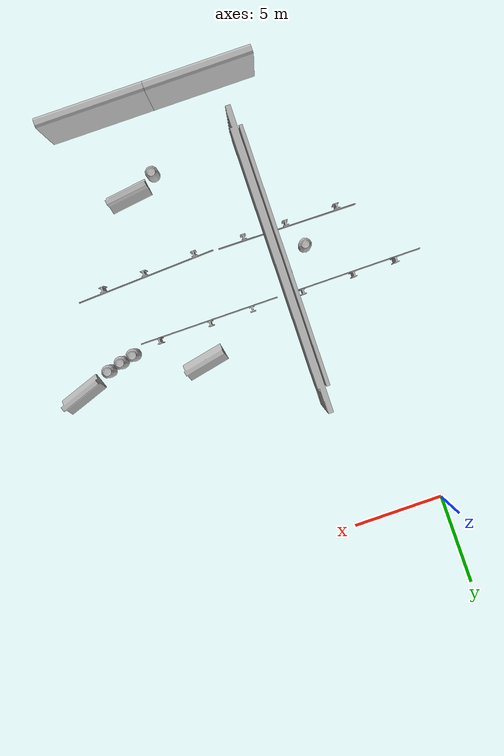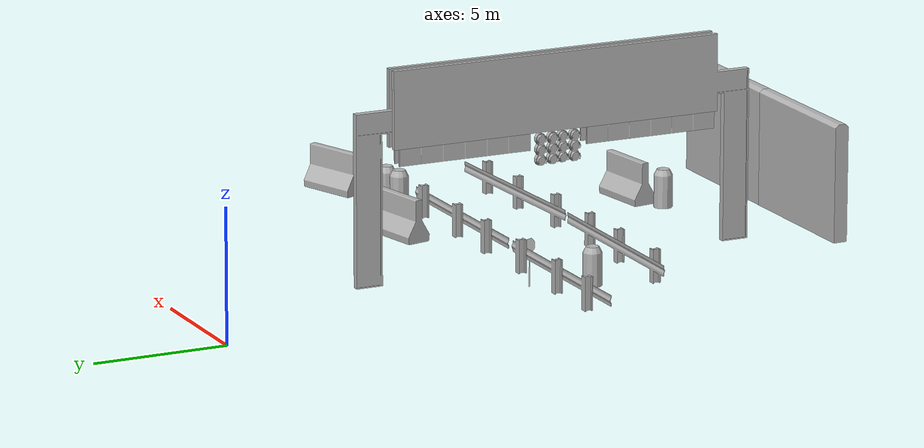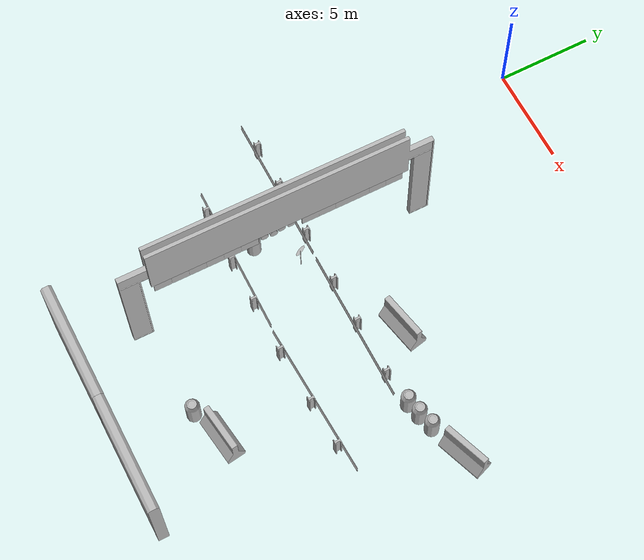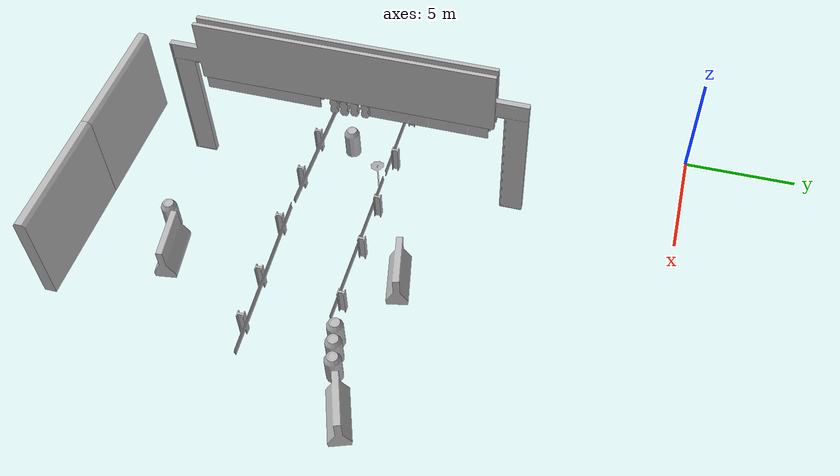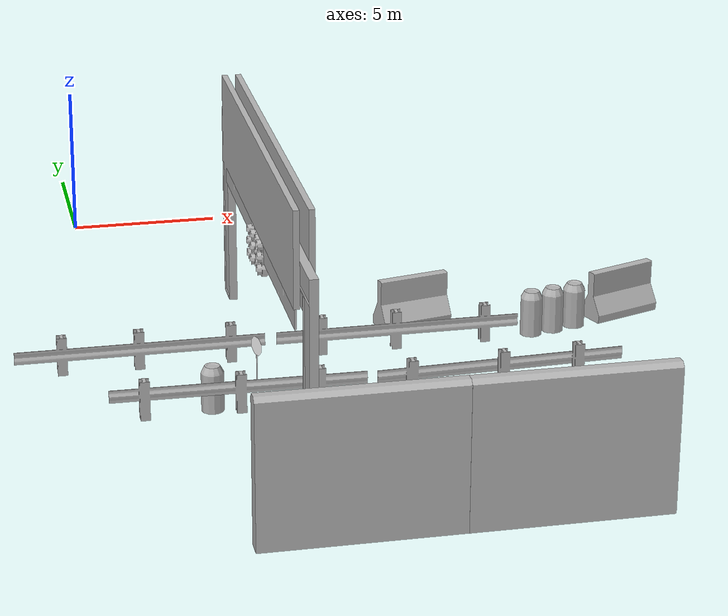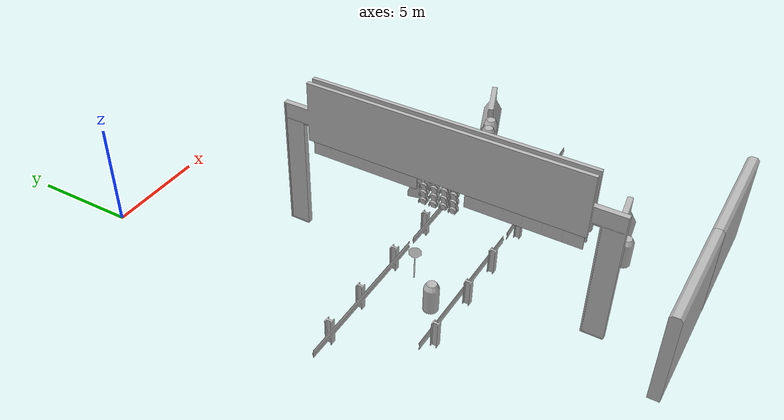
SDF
<sdf version="1.6">
 <world name="default">
  <model name="aws_robomaker_racetrack_Billboard_01">
   <link name="aws_Billboard_01::body">
    <inertial>
     <mass>1000</mass>
     <inertia><ixx>1</ixx><ixy>0</ixy><ixz>0</ixz><iyy>1</iyy><iyz>0</iyz><izz>1</izz></inertia>
    </inertial>
    <visual name="visual">
     <geometry>
      <mesh><uri>file://models/aws_robomaker_racetrack_Billboard_01/meshes/aws_Billboard_01_visual.DAE</uri></mesh>
     </geometry>
     <material><shader type="pixel"><normal_map>__default__</normal_map></shader></material>
     <meta><layer>2</layer></meta>
    </visual>
    <collision name="collision_0">
     <geometry>
      <mesh>
       <uri>file://models/aws_robomaker_racetrack_Billboard_01/meshes/aws_Billboard_01_collision.DAE</uri>
       <scale>1 1 1</scale>
      </mesh>
     </geometry>
     <surface>
      <friction>
       <ode><mu>1</mu><mu2>1</mu2><fdir1>0 0 0</fdir1><slip1>0</slip1><slip2>0</slip2></ode>
       <torsional>
        <coefficient>1</coefficient>
        <patch_radius>0</patch_radius>
        <surface_radius>0</surface_radius>
        <use_patch_radius>1</use_patch_radius>
        <ode><slip>0</slip></ode>
       </torsional>
      </friction>
      <bounce><restitution_coefficient>0</restitution_coefficient><threshold>1e+06</threshold></bounce>
      <contact>
       <collide_without_contact>0</collide_without_contact>
       <collide_without_contact_bitmask>1</collide_without_contact_bitmask>
       <collide_bitmask>1</collide_bitmask>
       <ode>
        <soft_cfm>0</soft_cfm>
        <soft_erp>0.2</soft_erp>
        <kp>1e+13</kp>
        <kd>1</kd>
        <max_vel>0.01</max_vel>
        <min_depth>0</min_depth>
       </ode>
       <bullet>
        <split_impulse>1</split_impulse>
        <split_impulse_penetration_threshold>-0.01</split_impulse_penetration_threshold>
        <soft_cfm>0</soft_cfm>
        <soft_erp>0.2</soft_erp>
        <kp>1e+13</kp>
        <kd>1</kd>
       </bullet>
      </contact>
     </surface>
    </collision>
   </link>
   <static>1</static>
   <pose>4.32789 -14.8431 -2e-06 0 1e-06 1.56416</pose>
  </model>
  <model name="aws_robomaker_racetrack_CrashworthBucket_01_22">
   <link name="aws_CrashworthBucket_01::body">
    <inertial>
     <mass>5</mass>
     <inertia><ixx>1</ixx><ixy>0</ixy><ixz>0</ixz><iyy>1</iyy><iyz>0</iyz><izz>1</izz></inertia>
    </inertial>
    <visual name="visual">
     <geometry>
      <mesh>
       <uri>file://models/aws_robomaker_racetrack_CrashworthBucket_01/meshes/aws_CrashworthBucket_01_visual.DAE</uri>
      </mesh>
     </geometry>
     <material><shader type="pixel"><normal_map>__default__</normal_map></shader></material>
     <meta><layer>0</layer></meta>
    </visual>
    <collision name="collision_0">
     <geometry>
      <mesh>
       <uri>file://models/aws_robomaker_racetrack_CrashworthBucket_01/meshes/aws_CrashworthBucket_01_collision.DAE</uri>
       <scale>1 1 1</scale>
      </mesh>
     </geometry>
     <surface>
      <friction>
       <ode><mu>1</mu><mu2>1</mu2><fdir1>0 0 0</fdir1><slip1>0</slip1><slip2>0</slip2></ode>
       <torsional>
        <coefficient>1</coefficient>
        <patch_radius>0</patch_radius>
        <surface_radius>0</surface_radius>
        <use_patch_radius>1</use_patch_radius>
        <ode><slip>0</slip></ode>
       </torsional>
      </friction>
      <bounce><restitution_coefficient>0</restitution_coefficient><threshold>1e+06</threshold></bounce>
      <contact>
       <collide_without_contact>0</collide_without_contact>
       <collide_without_contact_bitmask>1</collide_without_contact_bitmask>
       <collide_bitmask>1</collide_bitmask>
       <ode>
        <soft_cfm>0</soft_cfm>
        <soft_erp>0.2</soft_erp>
        <kp>1e+13</kp>
        <kd>1</kd>
        <max_vel>0.01</max_vel>
        <min_depth>0</min_depth>
       </ode>
       <bullet>
        <split_impulse>1</split_impulse>
        <split_impulse_penetration_threshold>-0.01</split_impulse_penetration_threshold>
        <soft_cfm>0</soft_cfm>
        <soft_erp>0.2</soft_erp>
        <kp>1e+13</kp>
        <kd>1</kd>
       </bullet>
      </contact>
     </surface>
    </collision>
   </link>
   <static>1</static>
   <pose>14.1427 -12.6734 0.054 0 -0 0</pose>
  </model>
  <model name="aws_robomaker_racetrack_CrashworthBucket_01_23">
   <link name="aws_CrashworthBucket_01::body">
    <inertial>
     <mass>5</mass>
     <inertia><ixx>1</ixx><ixy>0</ixy><ixz>0</ixz><iyy>1</iyy><iyz>0</iyz><izz>1</izz></inertia>
    </inertial>
    <visual name="visual">
     <geometry>
      <mesh>
       <uri>file://models/aws_robomaker_racetrack_CrashworthBucket_01/meshes/aws_CrashworthBucket_01_visual.DAE</uri>
      </mesh>
     </geometry>
     <material><shader type="pixel"><normal_map>__default__</normal_map></shader></material>
     <meta><layer>0</layer></meta>
    </visual>
    <collision name="collision_0">
     <geometry>
      <mesh>
       <uri>file://models/aws_robomaker_racetrack_CrashworthBucket_01/meshes/aws_CrashworthBucket_01_collision.DAE</uri>
       <scale>1 1 1</scale>
      </mesh>
     </geometry>
     <surface>
      <friction>
       <ode><mu>1</mu><mu2>1</mu2><fdir1>0 0 0</fdir1><slip1>0</slip1><slip2>0</slip2></ode>
       <torsional>
        <coefficient>1</coefficient>
        <patch_radius>0</patch_radius>
        <surface_radius>0</surface_radius>
        <use_patch_radius>1</use_patch_radius>
        <ode><slip>0</slip></ode>
       </torsional>
      </friction>
      <bounce><restitution_coefficient>0</restitution_coefficient><threshold>1e+06</threshold></bounce>
      <contact>
       <collide_without_contact>0</collide_without_contact>
       <collide_without_contact_bitmask>1</collide_without_contact_bitmask>
       <collide_bitmask>1</collide_bitmask>
       <ode>
        <soft_cfm>0</soft_cfm>
        <soft_erp>0.2</soft_erp>
        <kp>1e+13</kp>
        <kd>1</kd>
        <max_vel>0.01</max_vel>
        <min_depth>0</min_depth>
       </ode>
       <bullet>
        <split_impulse>1</split_impulse>
        <split_impulse_penetration_threshold>-0.01</split_impulse_penetration_threshold>
        <soft_cfm>0</soft_cfm>
        <soft_erp>0.2</soft_erp>
        <kp>1e+13</kp>
        <kd>1</kd>
       </bullet>
      </contact>
     </surface>
    </collision>
   </link>
   <static>1</static>
   <pose>14.9254 -12.4456 0.054 0 -0 0</pose>
  </model>
  <model name="aws_robomaker_racetrack_CrashworthBucket_01_25">
   <link name="aws_CrashworthBucket_01::body">
    <inertial>
     <mass>5</mass>
     <inertia><ixx>1</ixx><ixy>0</ixy><ixz>0</ixz><iyy>1</iyy><iyz>0</iyz><izz>1</izz></inertia>
    </inertial>
    <visual name="visual">
     <geometry>
      <mesh>
       <uri>file://models/aws_robomaker_racetrack_CrashworthBucket_01/meshes/aws_CrashworthBucket_01_visual.DAE</uri>
      </mesh>
     </geometry>
     <material><shader type="pixel"><normal_map>__default__</normal_map></shader></material>
     <meta><layer>0</layer></meta>
    </visual>
    <collision name="collision_0">
     <geometry>
      <mesh>
       <uri>file://models/aws_robomaker_racetrack_CrashworthBucket_01/meshes/aws_CrashworthBucket_01_collision.DAE</uri>
       <scale>1 1 1</scale>
      </mesh>
     </geometry>
     <surface>
      <friction>
       <ode><mu>1</mu><mu2>1</mu2><fdir1>0 0 0</fdir1><slip1>0</slip1><slip2>0</slip2></ode>
       <torsional>
        <coefficient>1</coefficient>
        <patch_radius>0</patch_radius>
        <surface_radius>0</surface_radius>
        <use_patch_radius>1</use_patch_radius>
        <ode><slip>0</slip></ode>
       </torsional>
      </friction>
      <bounce><restitution_coefficient>0</restitution_coefficient><threshold>1e+06</threshold></bounce>
      <contact>
       <collide_without_contact>0</collide_without_contact>
       <collide_without_contact_bitmask>1</collide_without_contact_bitmask>
       <collide_bitmask>1</collide_bitmask>
       <ode>
        <soft_cfm>0</soft_cfm>
        <soft_erp>0.2</soft_erp>
        <kp>1e+13</kp>
        <kd>1</kd>
        <max_vel>0.01</max_vel>
        <min_depth>0</min_depth>
       </ode>
       <bullet>
        <split_impulse>1</split_impulse>
        <split_impulse_penetration_threshold>-0.01</split_impulse_penetration_threshold>
        <soft_cfm>0</soft_cfm>
        <soft_erp>0.2</soft_erp>
        <kp>1e+13</kp>
        <kd>1</kd>
       </bullet>
      </contact>
     </surface>
    </collision>
   </link>
   <static>1</static>
   <pose>13.3868 -12.8508 0.054 0 -0 0</pose>
  </model>
  <model name="aws_robomaker_racetrack_CrashworthBucket_01_26">
   <link name="aws_CrashworthBucket_01::body">
    <inertial>
     <mass>5</mass>
     <inertia><ixx>1</ixx><ixy>0</ixy><ixz>0</ixz><iyy>1</iyy><iyz>0</iyz><izz>1</izz></inertia>
    </inertial>
    <visual name="visual">
     <geometry>
      <mesh>
       <uri>file://models/aws_robomaker_racetrack_CrashworthBucket_01/meshes/aws_CrashworthBucket_01_visual.DAE</uri>
      </mesh>
     </geometry>
     <material><shader type="pixel"><normal_map>__default__</normal_map></shader></material>
     <meta><layer>0</layer></meta>
    </visual>
    <collision name="collision_0">
     <geometry>
      <mesh>
       <uri>file://models/aws_robomaker_racetrack_CrashworthBucket_01/meshes/aws_CrashworthBucket_01_collision.DAE</uri>
       <scale>1 1 1</scale>
      </mesh>
     </geometry>
     <surface>
      <friction>
       <ode><mu>1</mu><mu2>1</mu2><fdir1>0 0 0</fdir1><slip1>0</slip1><slip2>0</slip2></ode>
       <torsional>
        <coefficient>1</coefficient>
        <patch_radius>0</patch_radius>
        <surface_radius>0</surface_radius>
        <use_patch_radius>1</use_patch_radius>
        <ode><slip>0</slip></ode>
       </torsional>
      </friction>
      <bounce><restitution_coefficient>0</restitution_coefficient><threshold>1e+06</threshold></bounce>
      <contact>
       <collide_without_contact>0</collide_without_contact>
       <collide_without_contact_bitmask>1</collide_without_contact_bitmask>
       <collide_bitmask>1</collide_bitmask>
       <ode>
        <soft_cfm>0</soft_cfm>
        <soft_erp>0.2</soft_erp>
        <kp>1e+13</kp>
        <kd>1</kd>
        <max_vel>0.01</max_vel>
        <min_depth>0</min_depth>
       </ode>
       <bullet>
        <split_impulse>1</split_impulse>
        <split_impulse_penetration_threshold>-0.01</split_impulse_penetration_threshold>
        <soft_cfm>0</soft_cfm>
        <soft_erp>0.2</soft_erp>
        <kp>1e+13</kp>
        <kd>1</kd>
       </bullet>
      </contact>
     </surface>
    </collision>
   </link>
   <static>1</static>
   <pose>9.22311 -21.8198 0.054 0 -0 0</pose>
  </model>
  <model name="aws_robomaker_racetrack_CrashworthBucket_01_28">
   <link name="aws_CrashworthBucket_01::body">
    <inertial>
     <mass>5</mass>
     <inertia><ixx>1</ixx><ixy>0</ixy><ixz>0</ixz><iyy>1</iyy><iyz>0</iyz><izz>1</izz></inertia>
    </inertial>
    <visual name="visual">
     <geometry>
      <mesh>
       <uri>file://models/aws_robomaker_racetrack_CrashworthBucket_01/meshes/aws_CrashworthBucket_01_visual.DAE</uri>
      </mesh>
     </geometry>
     <material><shader type="pixel"><normal_map>__default__</normal_map></shader></material>
     <meta><layer>0</layer></meta>
    </visual>
    <collision name="collision_0">
     <geometry>
      <mesh>
       <uri>file://models/aws_robomaker_racetrack_CrashworthBucket_01/meshes/aws_CrashworthBucket_01_collision.DAE</uri>
       <scale>1 1 1</scale>
      </mesh>
     </geometry>
     <surface>
      <friction>
       <ode><mu>1</mu><mu2>1</mu2><fdir1>0 0 0</fdir1><slip1>0</slip1><slip2>0</slip2></ode>
       <torsional>
        <coefficient>1</coefficient>
        <patch_radius>0</patch_radius>
        <surface_radius>0</surface_radius>
        <use_patch_radius>1</use_patch_radius>
        <ode><slip>0</slip></ode>
       </torsional>
      </friction>
      <bounce><restitution_coefficient>0</restitution_coefficient><threshold>1e+06</threshold></bounce>
      <contact>
       <collide_without_contact>0</collide_without_contact>
       <collide_without_contact_bitmask>1</collide_without_contact_bitmask>
       <collide_bitmask>1</collide_bitmask>
       <ode>
        <soft_cfm>0</soft_cfm>
        <soft_erp>0.2</soft_erp>
        <kp>1e+13</kp>
        <kd>1</kd>
        <max_vel>0.01</max_vel>
        <min_depth>0</min_depth>
       </ode>
       <bullet>
        <split_impulse>1</split_impulse>
        <split_impulse_penetration_threshold>-0.01</split_impulse_penetration_threshold>
        <soft_cfm>0</soft_cfm>
        <soft_erp>0.2</soft_erp>
        <kp>1e+13</kp>
        <kd>1</kd>
       </bullet>
      </contact>
     </surface>
    </collision>
   </link>
   <static>1</static>
   <pose>2.62293 -15.5135 -0.473949 0 -0 0</pose>
  </model>
  <model name="aws_robomaker_racetrack_FenceMesh_01_00">
   <link name="aws_FenceMesh_01::body">
    <inertial>
     <mass>1</mass>
     <inertia><ixx>1</ixx><ixy>0</ixy><ixz>0</ixz><iyy>1</iyy><iyz>0</iyz><izz>1</izz></inertia>
    </inertial>
    <visual name="visual">
     <geometry>
      <mesh><uri>file://models/aws_robomaker_racetrack_FenceMesh_01/meshes/aws_FenceMesh_01_visual.DAE</uri></mesh>
     </geometry>
     <material><shader type="pixel"><normal_map>__default__</normal_map></shader></material>
     <meta><layer>2</layer></meta>
    </visual>
    <collision name="collision_0">
     <geometry>
      <mesh>
       <uri>file://models/aws_robomaker_racetrack_FenceMesh_01/meshes/aws_FenceMesh_01_collision.DAE</uri>
       <scale>1 1 1</scale>
      </mesh>
     </geometry>
     <surface>
      <friction>
       <ode><mu>1</mu><mu2>1</mu2><fdir1>0 0 0</fdir1><slip1>0</slip1><slip2>0</slip2></ode>
       <torsional>
        <coefficient>1</coefficient>
        <patch_radius>0</patch_radius>
        <surface_radius>0</surface_radius>
        <use_patch_radius>1</use_patch_radius>
        <ode><slip>0</slip></ode>
       </torsional>
      </friction>
      <bounce><restitution_coefficient>0</restitution_coefficient><threshold>1e+06</threshold></bounce>
      <contact>
       <collide_without_contact>0</collide_without_contact>
       <collide_without_contact_bitmask>1</collide_without_contact_bitmask>
       <collide_bitmask>2</collide_bitmask>
       <ode>
        <soft_cfm>0</soft_cfm>
        <soft_erp>0.2</soft_erp>
        <kp>1e+13</kp>
        <kd>1</kd>
        <max_vel>0.01</max_vel>
        <min_depth>0</min_depth>
       </ode>
       <bullet>
        <split_impulse>1</split_impulse>
        <split_impulse_penetration_threshold>-0.01</split_impulse_penetration_threshold>
        <soft_cfm>0</soft_cfm>
        <soft_erp>0.2</soft_erp>
        <kp>1e+13</kp>
        <kd>1</kd>
       </bullet>
      </contact>
     </surface>
    </collision>
   </link>
   <static>1</static>
   <pose>4.2331 -11.1761 5.05223 0 0 -0.006038</pose>
  </model>
  <model name="aws_robomaker_racetrack_FenceMesh_01_01">
   <link name="aws_FenceMesh_01::body">
    <inertial>
     <mass>1</mass>
     <inertia><ixx>1</ixx><ixy>0</ixy><ixz>0</ixz><iyy>1</iyy><iyz>0</iyz><izz>1</izz></inertia>
    </inertial>
    <visual name="visual">
     <geometry>
      <mesh><uri>file://models/aws_robomaker_racetrack_FenceMesh_01/meshes/aws_FenceMesh_01_visual.DAE</uri></mesh>
     </geometry>
     <material><shader type="pixel"><normal_map>__default__</normal_map></shader></material>
     <meta><layer>2</layer></meta>
    </visual>
    <collision name="collision_0">
     <geometry>
      <mesh>
       <uri>file://models/aws_robomaker_racetrack_FenceMesh_01/meshes/aws_FenceMesh_01_collision.DAE</uri>
       <scale>1 1 1</scale>
      </mesh>
     </geometry>
     <surface>
      <friction>
       <ode><mu>1</mu><mu2>1</mu2><fdir1>0 0 0</fdir1><slip1>0</slip1><slip2>0</slip2></ode>
       <torsional>
        <coefficient>1</coefficient>
        <patch_radius>0</patch_radius>
        <surface_radius>0</surface_radius>
        <use_patch_radius>1</use_patch_radius>
        <ode><slip>0</slip></ode>
       </torsional>
      </friction>
      <bounce><restitution_coefficient>0</restitution_coefficient><threshold>1e+06</threshold></bounce>
      <contact>
       <collide_without_contact>0</collide_without_contact>
       <collide_without_contact_bitmask>1</collide_without_contact_bitmask>
       <collide_bitmask>2</collide_bitmask>
       <ode>
        <soft_cfm>0</soft_cfm>
        <soft_erp>0.2</soft_erp>
        <kp>1e+13</kp>
        <kd>1</kd>
        <max_vel>0.01</max_vel>
        <min_depth>0</min_depth>
       </ode>
       <bullet>
        <split_impulse>1</split_impulse>
        <split_impulse_penetration_threshold>-0.01</split_impulse_penetration_threshold>
        <soft_cfm>0</soft_cfm>
        <soft_erp>0.2</soft_erp>
        <kp>1e+13</kp>
        <kd>1</kd>
       </bullet>
      </contact>
     </surface>
    </collision>
   </link>
   <static>1</static>
   <pose>4.16406 -18.6269 5.05223 0 0 -0.006038</pose>
  </model>
  <model name="aws_robomaker_racetrack_FenceMesh_01_02">
   <link name="aws_FenceMesh_01::body">
    <inertial>
     <mass>1</mass>
     <inertia><ixx>1</ixx><ixy>0</ixy><ixz>0</ixz><iyy>1</iyy><iyz>0</iyz><izz>1</izz></inertia>
    </inertial>
    <visual name="visual">
     <geometry>
      <mesh><uri>file://models/aws_robomaker_racetrack_FenceMesh_01/meshes/aws_FenceMesh_01_visual.DAE</uri></mesh>
     </geometry>
     <material><shader type="pixel"><normal_map>__default__</normal_map></shader></material>
     <meta><layer>2</layer></meta>
    </visual>
    <collision name="collision_0">
     <geometry>
      <mesh>
       <uri>file://models/aws_robomaker_racetrack_FenceMesh_01/meshes/aws_FenceMesh_01_collision.DAE</uri>
       <scale>1 1 1</scale>
      </mesh>
     </geometry>
     <surface>
      <friction>
       <ode><mu>1</mu><mu2>1</mu2><fdir1>0 0 0</fdir1><slip1>0</slip1><slip2>0</slip2></ode>
       <torsional>
        <coefficient>1</coefficient>
        <patch_radius>0</patch_radius>
        <surface_radius>0</surface_radius>
        <use_patch_radius>1</use_patch_radius>
        <ode><slip>0</slip></ode>
       </torsional>
      </friction>
      <bounce><restitution_coefficient>0</restitution_coefficient><threshold>1e+06</threshold></bounce>
      <contact>
       <collide_without_contact>0</collide_without_contact>
       <collide_without_contact_bitmask>1</collide_without_contact_bitmask>
       <collide_bitmask>2</collide_bitmask>
       <ode>
        <soft_cfm>0</soft_cfm>
        <soft_erp>0.2</soft_erp>
        <kp>1e+13</kp>
        <kd>1</kd>
        <max_vel>0.01</max_vel>
        <min_depth>0</min_depth>
       </ode>
       <bullet>
        <split_impulse>1</split_impulse>
        <split_impulse_penetration_threshold>-0.01</split_impulse_penetration_threshold>
        <soft_cfm>0</soft_cfm>
        <soft_erp>0.2</soft_erp>
        <kp>1e+13</kp>
        <kd>1</kd>
       </bullet>
      </contact>
     </surface>
    </collision>
   </link>
   <static>1</static>
   <pose>4.63223 -18.6067 5.05223 0 0 -0.006038</pose>
  </model>
  <model name="aws_robomaker_racetrack_FenceMesh_01_03">
   <link name="aws_FenceMesh_01::body">
    <inertial>
     <mass>1</mass>
     <inertia><ixx>1</ixx><ixy>0</ixy><ixz>0</ixz><iyy>1</iyy><iyz>0</iyz><izz>1</izz></inertia>
    </inertial>
    <visual name="visual">
     <geometry>
      <mesh><uri>file://models/aws_robomaker_racetrack_FenceMesh_01/meshes/aws_FenceMesh_01_visual.DAE</uri></mesh>
     </geometry>
     <material><shader type="pixel"><normal_map>__default__</normal_map></shader></material>
     <meta><layer>2</layer></meta>
    </visual>
    <collision name="collision_0">
     <geometry>
      <mesh>
       <uri>file://models/aws_robomaker_racetrack_FenceMesh_01/meshes/aws_FenceMesh_01_collision.DAE</uri>
       <scale>1 1 1</scale>
      </mesh>
     </geometry>
     <surface>
      <friction>
       <ode><mu>1</mu><mu2>1</mu2><fdir1>0 0 0</fdir1><slip1>0</slip1><slip2>0</slip2></ode>
       <torsional>
        <coefficient>1</coefficient>
        <patch_radius>0</patch_radius>
        <surface_radius>0</surface_radius>
        <use_patch_radius>1</use_patch_radius>
        <ode><slip>0</slip></ode>
       </torsional>
      </friction>
      <bounce><restitution_coefficient>0</restitution_coefficient><threshold>1e+06</threshold></bounce>
      <contact>
       <collide_without_contact>0</collide_without_contact>
       <collide_without_contact_bitmask>1</collide_without_contact_bitmask>
       <collide_bitmask>2</collide_bitmask>
       <ode>
        <soft_cfm>0</soft_cfm>
        <soft_erp>0.2</soft_erp>
        <kp>1e+13</kp>
        <kd>1</kd>
        <max_vel>0.01</max_vel>
        <min_depth>0</min_depth>
       </ode>
       <bullet>
        <split_impulse>1</split_impulse>
        <split_impulse_penetration_threshold>-0.01</split_impulse_penetration_threshold>
        <soft_cfm>0</soft_cfm>
        <soft_erp>0.2</soft_erp>
        <kp>1e+13</kp>
        <kd>1</kd>
       </bullet>
      </contact>
     </surface>
    </collision>
   </link>
   <static>1</static>
   <pose>4.67467 -11.1966 5.05223 0 0 -0.006038</pose>
  </model>
  <model name="aws_robomaker_racetrack_Fence_01_06">
   <link name="aws_Fence_01::body">
    <inertial>
     <mass>5</mass>
     <inertia><ixx>1</ixx><ixy>0</ixy><ixz>0</ixz><iyy>1</iyy><iyz>0</iyz><izz>1</izz></inertia>
    </inertial>
    <visual name="visual">
     <geometry>
      <mesh><uri>file://models/aws_robomaker_racetrack_Fence_01/meshes/aws_Fence_01_visual.DAE</uri></mesh>
     </geometry>
     <material><shader type="pixel"><normal_map>__default__</normal_map></shader></material>
     <meta><layer>0</layer></meta>
    </visual>
    <collision name="collision_0">
     <geometry>
      <mesh>
       <uri>file://models/aws_robomaker_racetrack_Fence_01/meshes/aws_Fence_01_collision.DAE</uri>
       <scale>1 1 1</scale>
      </mesh>
     </geometry>
     <surface>
      <friction>
       <ode><mu>1</mu><mu2>1</mu2><fdir1>0 0 0</fdir1><slip1>0</slip1><slip2>0</slip2></ode>
       <torsional>
        <coefficient>1</coefficient>
        <patch_radius>0</patch_radius>
        <surface_radius>0</surface_radius>
        <use_patch_radius>1</use_patch_radius>
        <ode><slip>0</slip></ode>
       </torsional>
      </friction>
      <bounce><restitution_coefficient>0</restitution_coefficient><threshold>1e+06</threshold></bounce>
      <contact>
       <collide_without_contact>0</collide_without_contact>
       <collide_without_contact_bitmask>1</collide_without_contact_bitmask>
       <collide_bitmask>1</collide_bitmask>
       <ode>
        <soft_cfm>0</soft_cfm>
        <soft_erp>0.2</soft_erp>
        <kp>1e+13</kp>
        <kd>1</kd>
        <max_vel>0.01</max_vel>
        <min_depth>0</min_depth>
       </ode>
       <bullet>
        <split_impulse>1</split_impulse>
        <split_impulse_penetration_threshold>-0.01</split_impulse_penetration_threshold>
        <soft_cfm>0</soft_cfm>
        <soft_erp>0.2</soft_erp>
        <kp>1e+13</kp>
        <kd>1</kd>
       </bullet>
      </contact>
     </surface>
    </collision>
   </link>
   <static>1</static>
   <pose>3.24763 -16.8996 0.054 0 0 -1.58165</pose>
  </model>
  <model name="aws_robomaker_racetrack_Fence_01_07">
   <link name="aws_Fence_01::body">
    <inertial>
     <mass>5</mass>
     <inertia><ixx>1</ixx><ixy>0</ixy><ixz>0</ixz><iyy>1</iyy><iyz>0</iyz><izz>1</izz></inertia>
    </inertial>
    <visual name="visual">
     <geometry>
      <mesh><uri>file://models/aws_robomaker_racetrack_Fence_01/meshes/aws_Fence_01_visual.DAE</uri></mesh>
     </geometry>
     <material><shader type="pixel"><normal_map>__default__</normal_map></shader></material>
     <meta><layer>0</layer></meta>
    </visual>
    <collision name="collision_0">
     <geometry>
      <mesh>
       <uri>file://models/aws_robomaker_racetrack_Fence_01/meshes/aws_Fence_01_collision.DAE</uri>
       <scale>1 1 1</scale>
      </mesh>
     </geometry>
     <surface>
      <friction>
       <ode><mu>1</mu><mu2>1</mu2><fdir1>0 0 0</fdir1><slip1>0</slip1><slip2>0</slip2></ode>
       <torsional>
        <coefficient>1</coefficient>
        <patch_radius>0</patch_radius>
        <surface_radius>0</surface_radius>
        <use_patch_radius>1</use_patch_radius>
        <ode><slip>0</slip></ode>
       </torsional>
      </friction>
      <bounce><restitution_coefficient>0</restitution_coefficient><threshold>1e+06</threshold></bounce>
      <contact>
       <collide_without_contact>0</collide_without_contact>
       <collide_without_contact_bitmask>1</collide_without_contact_bitmask>
       <collide_bitmask>1</collide_bitmask>
       <ode>
        <soft_cfm>0</soft_cfm>
        <soft_erp>0.2</soft_erp>
        <kp>1e+13</kp>
        <kd>1</kd>
        <max_vel>0.01</max_vel>
        <min_depth>0</min_depth>
       </ode>
       <bullet>
        <split_impulse>1</split_impulse>
        <split_impulse_penetration_threshold>-0.01</split_impulse_penetration_threshold>
        <soft_cfm>0</soft_cfm>
        <soft_erp>0.2</soft_erp>
        <kp>1e+13</kp>
        <kd>1</kd>
       </bullet>
      </contact>
     </surface>
    </collision>
   </link>
   <static>1</static>
   <pose>11.3643 -16.8139 0.054 0 0 -1.5255</pose>
  </model>
  <model name="aws_robomaker_racetrack_Fence_01_10">
   <link name="aws_Fence_01::body">
    <inertial>
     <mass>5</mass>
     <inertia><ixx>1</ixx><ixy>0</ixy><ixz>0</ixz><iyy>1</iyy><iyz>0</iyz><izz>1</izz></inertia>
    </inertial>
    <visual name="visual">
     <geometry>
      <mesh><uri>file://models/aws_robomaker_racetrack_Fence_01/meshes/aws_Fence_01_visual.DAE</uri></mesh>
     </geometry>
     <material><shader type="pixel"><normal_map>__default__</normal_map></shader></material>
     <meta><layer>0</layer></meta>
    </visual>
    <collision name="collision_0">
     <geometry>
      <mesh>
       <uri>file://models/aws_robomaker_racetrack_Fence_01/meshes/aws_Fence_01_collision.DAE</uri>
       <scale>1 1 1</scale>
      </mesh>
     </geometry>
     <surface>
      <friction>
       <ode><mu>1</mu><mu2>1</mu2><fdir1>0 0 0</fdir1><slip1>0</slip1><slip2>0</slip2></ode>
       <torsional>
        <coefficient>1</coefficient>
        <patch_radius>0</patch_radius>
        <surface_radius>0</surface_radius>
        <use_patch_radius>1</use_patch_radius>
        <ode><slip>0</slip></ode>
       </torsional>
      </friction>
      <bounce><restitution_coefficient>0</restitution_coefficient><threshold>1e+06</threshold></bounce>
      <contact>
       <collide_without_contact>0</collide_without_contact>
       <collide_without_contact_bitmask>1</collide_without_contact_bitmask>
       <collide_bitmask>1</collide_bitmask>
       <ode>
        <soft_cfm>0</soft_cfm>
        <soft_erp>0.2</soft_erp>
        <kp>1e+13</kp>
        <kd>1</kd>
        <max_vel>0.01</max_vel>
        <min_depth>0</min_depth>
       </ode>
       <bullet>
        <split_impulse>1</split_impulse>
        <split_impulse_penetration_threshold>-0.01</split_impulse_penetration_threshold>
        <soft_cfm>0</soft_cfm>
        <soft_erp>0.2</soft_erp>
        <kp>1e+13</kp>
        <kd>1</kd>
       </bullet>
      </contact>
     </surface>
    </collision>
   </link>
   <static>1</static>
   <pose>0.720398 -13.1346 0.054671 0 -0 1.57158</pose>
  </model>
  <model name="aws_robomaker_racetrack_Fence_01_11">
   <link name="aws_Fence_01::body">
    <inertial>
     <mass>5</mass>
     <inertia><ixx>1</ixx><ixy>0</ixy><ixz>0</ixz><iyy>1</iyy><iyz>0</iyz><izz>1</izz></inertia>
    </inertial>
    <visual name="visual">
     <geometry>
      <mesh><uri>file://models/aws_robomaker_racetrack_Fence_01/meshes/aws_Fence_01_visual.DAE</uri></mesh>
     </geometry>
     <material><shader type="pixel"><normal_map>__default__</normal_map></shader></material>
     <meta><layer>0</layer></meta>
    </visual>
    <collision name="collision_0">
     <geometry>
      <mesh>
       <uri>file://models/aws_robomaker_racetrack_Fence_01/meshes/aws_Fence_01_collision.DAE</uri>
       <scale>1 1 1</scale>
      </mesh>
     </geometry>
     <surface>
      <friction>
       <ode><mu>1</mu><mu2>1</mu2><fdir1>0 0 0</fdir1><slip1>0</slip1><slip2>0</slip2></ode>
       <torsional>
        <coefficient>1</coefficient>
        <patch_radius>0</patch_radius>
        <surface_radius>0</surface_radius>
        <use_patch_radius>1</use_patch_radius>
        <ode><slip>0</slip></ode>
       </torsional>
      </friction>
      <bounce><restitution_coefficient>0</restitution_coefficient><threshold>1e+06</threshold></bounce>
      <contact>
       <collide_without_contact>0</collide_without_contact>
       <collide_without_contact_bitmask>1</collide_without_contact_bitmask>
       <collide_bitmask>1</collide_bitmask>
       <ode>
        <soft_cfm>0</soft_cfm>
        <soft_erp>0.2</soft_erp>
        <kp>1e+13</kp>
        <kd>1</kd>
        <max_vel>0.01</max_vel>
        <min_depth>0</min_depth>
       </ode>
       <bullet>
        <split_impulse>1</split_impulse>
        <split_impulse_penetration_threshold>-0.01</split_impulse_penetration_threshold>
        <soft_cfm>0</soft_cfm>
        <soft_erp>0.2</soft_erp>
        <kp>1e+13</kp>
        <kd>1</kd>
       </bullet>
      </contact>
     </surface>
    </collision>
   </link>
   <static>1</static>
   <pose>8.89898 -13.1346 0.054638 0 -0 1.57268</pose>
  </model>
  <model name="aws_robomaker_racetrack_RaceStartLight_01_00">
   <link name="aws_RaceStartLight_01::body">
    <inertial>
     <mass>1</mass>
     <inertia><ixx>1</ixx><ixy>0</ixy><ixz>0</ixz><iyy>1</iyy><iyz>0</iyz><izz>1</izz></inertia>
    </inertial>
    <visual name="visual">
     <geometry>
      <mesh>
       <uri>file://models/aws_robomaker_racetrack_RaceStartLight_01/meshes/aws_RaceStartLight_01_visual.DAE</uri>
      </mesh>
     </geometry>
     <material><shader type="pixel"><normal_map>__default__</normal_map></shader></material>
     <meta><layer>2</layer></meta>
    </visual>
    <collision name="collision_1">
     <geometry>
      <mesh>
       <uri>file://models/aws_robomaker_racetrack_RaceStartLight_01/meshes/aws_RaceStartLight_01_collision.DAE</uri>
       <scale>1 1 1</scale>
      </mesh>
     </geometry>
     <surface>
      <friction>
       <ode><mu>1</mu><mu2>1</mu2><fdir1>0 0 0</fdir1><slip1>0</slip1><slip2>0</slip2></ode>
       <torsional>
        <coefficient>1</coefficient>
        <patch_radius>0</patch_radius>
        <surface_radius>0</surface_radius>
        <use_patch_radius>1</use_patch_radius>
        <ode><slip>0</slip></ode>
       </torsional>
      </friction>
      <bounce><restitution_coefficient>0</restitution_coefficient><threshold>1e+06</threshold></bounce>
      <contact>
       <collide_without_contact>0</collide_without_contact>
       <collide_without_contact_bitmask>1</collide_without_contact_bitmask>
       <collide_bitmask>2</collide_bitmask>
       <ode>
        <soft_cfm>0</soft_cfm>
        <soft_erp>0.2</soft_erp>
        <kp>1e+13</kp>
        <kd>1</kd>
        <max_vel>0.01</max_vel>
        <min_depth>0</min_depth>
       </ode>
       <bullet>
        <split_impulse>1</split_impulse>
        <split_impulse_penetration_threshold>-0.01</split_impulse_penetration_threshold>
        <soft_cfm>0</soft_cfm>
        <soft_erp>0.2</soft_erp>
        <kp>1e+13</kp>
        <kd>1</kd>
       </bullet>
      </contact>
     </surface>
    </collision>
   </link>
   <static>1</static>
   <pose>4.13359 -14.1692 5.08709 0 -0 0</pose>
  </model>
  <model name="aws_robomaker_racetrack_RaceStartLight_01_01">
   <link name="aws_RaceStartLight_01::body">
    <inertial>
     <mass>1</mass>
     <inertia><ixx>1</ixx><ixy>0</ixy><ixz>0</ixz><iyy>1</iyy><iyz>0</iyz><izz>1</izz></inertia>
    </inertial>
    <visual name="visual">
     <geometry>
      <mesh>
       <uri>file://models/aws_robomaker_racetrack_RaceStartLight_01/meshes/aws_RaceStartLight_01_visual.DAE</uri>
      </mesh>
     </geometry>
     <material><shader type="pixel"><normal_map>__default__</normal_map></shader></material>
     <meta><layer>2</layer></meta>
    </visual>
    <collision name="collision_1">
     <geometry>
      <mesh>
       <uri>file://models/aws_robomaker_racetrack_RaceStartLight_01/meshes/aws_RaceStartLight_01_collision.DAE</uri>
       <scale>1 1 1</scale>
      </mesh>
     </geometry>
     <surface>
      <friction>
       <ode><mu>1</mu><mu2>1</mu2><fdir1>0 0 0</fdir1><slip1>0</slip1><slip2>0</slip2></ode>
       <torsional>
        <coefficient>1</coefficient>
        <patch_radius>0</patch_radius>
        <surface_radius>0</surface_radius>
        <use_patch_radius>1</use_patch_radius>
        <ode><slip>0</slip></ode>
       </torsional>
      </friction>
      <bounce><restitution_coefficient>0</restitution_coefficient><threshold>1e+06</threshold></bounce>
      <contact>
       <collide_without_contact>0</collide_without_contact>
       <collide_without_contact_bitmask>1</collide_without_contact_bitmask>
       <collide_bitmask>2</collide_bitmask>
       <ode>
        <soft_cfm>0</soft_cfm>
        <soft_erp>0.2</soft_erp>
        <kp>1e+13</kp>
        <kd>1</kd>
        <max_vel>0.01</max_vel>
        <min_depth>0</min_depth>
       </ode>
       <bullet>
        <split_impulse>1</split_impulse>
        <split_impulse_penetration_threshold>-0.01</split_impulse_penetration_threshold>
        <soft_cfm>0</soft_cfm>
        <soft_erp>0.2</soft_erp>
        <kp>1e+13</kp>
        <kd>1</kd>
       </bullet>
      </contact>
     </surface>
    </collision>
   </link>
   <static>1</static>
   <pose>4.14665 -14.6522 5.08709 0 -0 0</pose>
  </model>
  <model name="aws_robomaker_racetrack_RaceStartLight_01_02">
   <link name="aws_RaceStartLight_01::body">
    <inertial>
     <mass>1</mass>
     <inertia><ixx>1</ixx><ixy>0</ixy><ixz>0</ixz><iyy>1</iyy><iyz>0</iyz><izz>1</izz></inertia>
    </inertial>
    <visual name="visual">
     <geometry>
      <mesh>
       <uri>file://models/aws_robomaker_racetrack_RaceStartLight_01/meshes/aws_RaceStartLight_01_visual.DAE</uri>
      </mesh>
     </geometry>
     <material><shader type="pixel"><normal_map>__default__</normal_map></shader></material>
     <meta><layer>2</layer></meta>
    </visual>
    <collision name="collision_1">
     <geometry>
      <mesh>
       <uri>file://models/aws_robomaker_racetrack_RaceStartLight_01/meshes/aws_RaceStartLight_01_collision.DAE</uri>
       <scale>1 1 1</scale>
      </mesh>
     </geometry>
     <surface>
      <friction>
       <ode><mu>1</mu><mu2>1</mu2><fdir1>0 0 0</fdir1><slip1>0</slip1><slip2>0</slip2></ode>
       <torsional>
        <coefficient>1</coefficient>
        <patch_radius>0</patch_radius>
        <surface_radius>0</surface_radius>
        <use_patch_radius>1</use_patch_radius>
        <ode><slip>0</slip></ode>
       </torsional>
      </friction>
      <bounce><restitution_coefficient>0</restitution_coefficient><threshold>1e+06</threshold></bounce>
      <contact>
       <collide_without_contact>0</collide_without_contact>
       <collide_without_contact_bitmask>1</collide_without_contact_bitmask>
       <collide_bitmask>2</collide_bitmask>
       <ode>
        <soft_cfm>0</soft_cfm>
        <soft_erp>0.2</soft_erp>
        <kp>1e+13</kp>
        <kd>1</kd>
        <max_vel>0.01</max_vel>
        <min_depth>0</min_depth>
       </ode>
       <bullet>
        <split_impulse>1</split_impulse>
        <split_impulse_penetration_threshold>-0.01</split_impulse_penetration_threshold>
        <soft_cfm>0</soft_cfm>
        <soft_erp>0.2</soft_erp>
        <kp>1e+13</kp>
        <kd>1</kd>
       </bullet>
      </contact>
     </surface>
    </collision>
   </link>
   <static>1</static>
   <pose>4.21676 -15.0918 5.08709 0 -0 0</pose>
  </model>
  <model name="aws_robomaker_racetrack_RaceStartLight_01_03">
   <link name="aws_RaceStartLight_01::body">
    <inertial>
     <mass>1</mass>
     <inertia><ixx>1</ixx><ixy>0</ixy><ixz>0</ixz><iyy>1</iyy><iyz>0</iyz><izz>1</izz></inertia>
    </inertial>
    <visual name="visual">
     <geometry>
      <mesh>
       <uri>file://models/aws_robomaker_racetrack_RaceStartLight_01/meshes/aws_RaceStartLight_01_visual.DAE</uri>
      </mesh>
     </geometry>
     <material><shader type="pixel"><normal_map>__default__</normal_map></shader></material>
     <meta><layer>2</layer></meta>
    </visual>
    <collision name="collision_1">
     <geometry>
      <mesh>
       <uri>file://models/aws_robomaker_racetrack_RaceStartLight_01/meshes/aws_RaceStartLight_01_collision.DAE</uri>
       <scale>1 1 1</scale>
      </mesh>
     </geometry>
     <surface>
      <friction>
       <ode><mu>1</mu><mu2>1</mu2><fdir1>0 0 0</fdir1><slip1>0</slip1><slip2>0</slip2></ode>
       <torsional>
        <coefficient>1</coefficient>
        <patch_radius>0</patch_radius>
        <surface_radius>0</surface_radius>
        <use_patch_radius>1</use_patch_radius>
        <ode><slip>0</slip></ode>
       </torsional>
      </friction>
      <bounce><restitution_coefficient>0</restitution_coefficient><threshold>1e+06</threshold></bounce>
      <contact>
       <collide_without_contact>0</collide_without_contact>
       <collide_without_contact_bitmask>1</collide_without_contact_bitmask>
       <collide_bitmask>2</collide_bitmask>
       <ode>
        <soft_cfm>0</soft_cfm>
        <soft_erp>0.2</soft_erp>
        <kp>1e+13</kp>
        <kd>1</kd>
        <max_vel>0.01</max_vel>
        <min_depth>0</min_depth>
       </ode>
       <bullet>
        <split_impulse>1</split_impulse>
        <split_impulse_penetration_threshold>-0.01</split_impulse_penetration_threshold>
        <soft_cfm>0</soft_cfm>
        <soft_erp>0.2</soft_erp>
        <kp>1e+13</kp>
        <kd>1</kd>
       </bullet>
      </contact>
     </surface>
    </collision>
   </link>
   <static>1</static>
   <pose>4.17594 -15.5526 5.08709 0 -0 0</pose>
  </model>
  <model name="aws_robomaker_racetrack_StonePier_01_17">
   <link name="aws_StonePier_01::body">
    <inertial>
     <mass>10</mass>
     <inertia><ixx>0</ixx><ixy>0</ixy><ixz>0</ixz><iyy>0</iyy><iyz>0</iyz><izz>0</izz></inertia>
    </inertial>
    <visual name="visual">
     <geometry>
      <mesh><uri>file://models/aws_robomaker_racetrack_StonePier_01/meshes/aws_StonePier_01_visual.DAE</uri></mesh>
     </geometry>
     <material><shader type="pixel"><normal_map>__default__</normal_map></shader></material>
     <meta><layer>0</layer></meta>
    </visual>
    <collision name="collision_0">
     <geometry>
      <mesh>
       <uri>file://models/aws_robomaker_racetrack_StonePier_01/meshes/aws_StonePier_01_collision.DAE</uri>
       <scale>1 1 1</scale>
      </mesh>
     </geometry>
     <surface>
      <friction>
       <ode><mu>1</mu><mu2>1</mu2><fdir1>0 0 0</fdir1><slip1>0</slip1><slip2>0</slip2></ode>
       <torsional>
        <coefficient>1</coefficient>
        <patch_radius>0</patch_radius>
        <surface_radius>0</surface_radius>
        <use_patch_radius>1</use_patch_radius>
        <ode><slip>0</slip></ode>
       </torsional>
      </friction>
      <bounce><restitution_coefficient>0</restitution_coefficient><threshold>1e+06</threshold></bounce>
      <contact>
       <collide_without_contact>0</collide_without_contact>
       <collide_without_contact_bitmask>1</collide_without_contact_bitmask>
       <collide_bitmask>1</collide_bitmask>
       <ode>
        <soft_cfm>0</soft_cfm>
        <soft_erp>0.2</soft_erp>
        <kp>1e+13</kp>
        <kd>1</kd>
        <max_vel>0.01</max_vel>
        <min_depth>0</min_depth>
       </ode>
       <bullet>
        <split_impulse>1</split_impulse>
        <split_impulse_penetration_threshold>-0.01</split_impulse_penetration_threshold>
        <soft_cfm>0</soft_cfm>
        <soft_erp>0.2</soft_erp>
        <kp>1e+13</kp>
        <kd>1</kd>
       </bullet>
      </contact>
     </surface>
    </collision>
   </link>
   <static>1</static>
   <pose>16.7061 -11.7058 0.054 0 0 -2.7953</pose>
  </model>
  <model name="aws_robomaker_racetrack_StonePier_01_19">
   <link name="aws_StonePier_01::body">
    <inertial>
     <mass>10</mass>
     <inertia><ixx>0</ixx><ixy>0</ixy><ixz>0</ixz><iyy>0</iyy><iyz>0</iyz><izz>0</izz></inertia>
    </inertial>
    <visual name="visual">
     <geometry>
      <mesh><uri>file://models/aws_robomaker_racetrack_StonePier_01/meshes/aws_StonePier_01_visual.DAE</uri></mesh>
     </geometry>
     <material><shader type="pixel"><normal_map>__default__</normal_map></shader></material>
     <meta><layer>0</layer></meta>
    </visual>
    <collision name="collision_0">
     <geometry>
      <mesh>
       <uri>file://models/aws_robomaker_racetrack_StonePier_01/meshes/aws_StonePier_01_collision.DAE</uri>
       <scale>1 1 1</scale>
      </mesh>
     </geometry>
     <surface>
      <friction>
       <ode><mu>1</mu><mu2>1</mu2><fdir1>0 0 0</fdir1><slip1>0</slip1><slip2>0</slip2></ode>
       <torsional>
        <coefficient>1</coefficient>
        <patch_radius>0</patch_radius>
        <surface_radius>0</surface_radius>
        <use_patch_radius>1</use_patch_radius>
        <ode><slip>0</slip></ode>
       </torsional>
      </friction>
      <bounce><restitution_coefficient>0</restitution_coefficient><threshold>1e+06</threshold></bounce>
      <contact>
       <collide_without_contact>0</collide_without_contact>
       <collide_without_contact_bitmask>1</collide_without_contact_bitmask>
       <collide_bitmask>1</collide_bitmask>
       <ode>
        <soft_cfm>0</soft_cfm>
        <soft_erp>0.2</soft_erp>
        <kp>1e+13</kp>
        <kd>1</kd>
        <max_vel>0.01</max_vel>
        <min_depth>0</min_depth>
       </ode>
       <bullet>
        <split_impulse>1</split_impulse>
        <split_impulse_penetration_threshold>-0.01</split_impulse_penetration_threshold>
        <soft_cfm>0</soft_cfm>
        <soft_erp>0.2</soft_erp>
        <kp>1e+13</kp>
        <kd>1</kd>
       </bullet>
      </contact>
     </surface>
    </collision>
   </link>
   <static>1</static>
   <pose>9.84486 -11.2119 0.054 0 0 -2.93657</pose>
  </model>
  <model name="aws_robomaker_racetrack_StonePier_01_20">
   <link name="aws_StonePier_01::body">
    <inertial>
     <mass>10</mass>
     <inertia><ixx>0</ixx><ixy>0</ixy><ixz>0</ixz><iyy>0</iyy><iyz>0</iyz><izz>0</izz></inertia>
    </inertial>
    <visual name="visual">
     <geometry>
      <mesh><uri>file://models/aws_robomaker_racetrack_StonePier_01/meshes/aws_StonePier_01_visual.DAE</uri></mesh>
     </geometry>
     <material><shader type="pixel"><normal_map>__default__</normal_map></shader></material>
     <meta><layer>0</layer></meta>
    </visual>
    <collision name="collision_0">
     <geometry>
      <mesh>
       <uri>file://models/aws_robomaker_racetrack_StonePier_01/meshes/aws_StonePier_01_collision.DAE</uri>
       <scale>1 1 1</scale>
      </mesh>
     </geometry>
     <surface>
      <friction>
       <ode><mu>1</mu><mu2>1</mu2><fdir1>0 0 0</fdir1><slip1>0</slip1><slip2>0</slip2></ode>
       <torsional>
        <coefficient>1</coefficient>
        <patch_radius>0</patch_radius>
        <surface_radius>0</surface_radius>
        <use_patch_radius>1</use_patch_radius>
        <ode><slip>0</slip></ode>
       </torsional>
      </friction>
      <bounce><restitution_coefficient>0</restitution_coefficient><threshold>1e+06</threshold></bounce>
      <contact>
       <collide_without_contact>0</collide_without_contact>
       <collide_without_contact_bitmask>1</collide_without_contact_bitmask>
       <collide_bitmask>1</collide_bitmask>
       <ode>
        <soft_cfm>0</soft_cfm>
        <soft_erp>0.2</soft_erp>
        <kp>1e+13</kp>
        <kd>1</kd>
        <max_vel>0.01</max_vel>
        <min_depth>0</min_depth>
       </ode>
       <bullet>
        <split_impulse>1</split_impulse>
        <split_impulse_penetration_threshold>-0.01</split_impulse_penetration_threshold>
        <soft_cfm>0</soft_cfm>
        <soft_erp>0.2</soft_erp>
        <kp>1e+13</kp>
        <kd>1</kd>
       </bullet>
      </contact>
     </surface>
    </collision>
   </link>
   <static>1</static>
   <pose>10.8625 -21.1556 0.054 0 -0 0.135159</pose>
  </model>
  <model name="aws_robomaker_racetrack_Wall_01_16">
   <link name="aws_Wall_01::body">
    <inertial>
     <mass>500</mass>
     <inertia><ixx>1</ixx><ixy>0</ixy><ixz>0</ixz><iyy>1</iyy><iyz>0</iyz><izz>1</izz></inertia>
    </inertial>
    <visual name="visual">
     <geometry>
      <mesh>
       <uri>file://models/aws_robomaker_racetrack_Wall_01/meshes/aws_Wall_01_visual.DAE</uri>
       <scale>2.59853 2.59853 2.59853</scale>
      </mesh>
     </geometry>
     <material><shader type="pixel"><normal_map>__default__</normal_map></shader></material>
     <meta><layer>1</layer></meta>
    </visual>
    <collision name="collision_0">
     <geometry>
      <mesh>
       <uri>file://models/aws_robomaker_racetrack_Wall_01/meshes/aws_Wall_01_collision.DAE</uri>
       <scale>2.59853 2.59853 2.59853</scale>
      </mesh>
     </geometry>
     <surface>
      <friction>
       <ode><mu>1</mu><mu2>1</mu2><fdir1>0 0 0</fdir1><slip1>0</slip1><slip2>0</slip2></ode>
       <torsional>
        <coefficient>1</coefficient>
        <patch_radius>0</patch_radius>
        <surface_radius>0</surface_radius>
        <use_patch_radius>1</use_patch_radius>
        <ode><slip>0</slip></ode>
       </torsional>
      </friction>
      <bounce><restitution_coefficient>0</restitution_coefficient><threshold>1e+06</threshold></bounce>
      <contact>
       <collide_without_contact>0</collide_without_contact>
       <collide_without_contact_bitmask>1</collide_without_contact_bitmask>
       <collide_bitmask>1</collide_bitmask>
       <ode>
        <soft_cfm>0</soft_cfm>
        <soft_erp>0.2</soft_erp>
        <kp>1e+13</kp>
        <kd>1</kd>
        <max_vel>0.01</max_vel>
        <min_depth>0</min_depth>
       </ode>
       <bullet>
        <split_impulse>1</split_impulse>
        <split_impulse_penetration_threshold>-0.01</split_impulse_penetration_threshold>
        <soft_cfm>0</soft_cfm>
        <soft_erp>0.2</soft_erp>
        <kp>1e+13</kp>
        <kd>1</kd>
       </bullet>
      </contact>
     </surface>
    </collision>
   </link>
   <static>1</static>
   <pose>5.12343 -25.507 0 0 -0 0</pose>
  </model>
  <model name="aws_robomaker_racetrack_Wall_01_17">
   <link name="aws_Wall_01::body">
    <inertial>
     <mass>500</mass>
     <inertia><ixx>1</ixx><ixy>0</ixy><ixz>0</ixz><iyy>1</iyy><iyz>0</iyz><izz>1</izz></inertia>
    </inertial>
    <visual name="visual">
     <geometry>
      <mesh>
       <uri>file://models/aws_robomaker_racetrack_Wall_01/meshes/aws_Wall_01_visual.DAE</uri>
       <scale>2.59853 2.59853 2.59853</scale>
      </mesh>
     </geometry>
     <material><shader type="pixel"><normal_map>__default__</normal_map></shader></material>
     <meta><layer>1</layer></meta>
    </visual>
    <collision name="collision_0">
     <geometry>
      <mesh>
       <uri>file://models/aws_robomaker_racetrack_Wall_01/meshes/aws_Wall_01_collision.DAE</uri>
       <scale>2.59853 2.59853 2.59853</scale>
      </mesh>
     </geometry>
     <surface>
      <friction>
       <ode><mu>1</mu><mu2>1</mu2><fdir1>0 0 0</fdir1><slip1>0</slip1><slip2>0</slip2></ode>
       <torsional>
        <coefficient>1</coefficient>
        <patch_radius>0</patch_radius>
        <surface_radius>0</surface_radius>
        <use_patch_radius>1</use_patch_radius>
        <ode><slip>0</slip></ode>
       </torsional>
      </friction>
      <bounce><restitution_coefficient>0</restitution_coefficient><threshold>1e+06</threshold></bounce>
      <contact>
       <collide_without_contact>0</collide_without_contact>
       <collide_without_contact_bitmask>1</collide_without_contact_bitmask>
       <collide_bitmask>1</collide_bitmask>
       <ode>
        <soft_cfm>0</soft_cfm>
        <soft_erp>0.2</soft_erp>
        <kp>1e+13</kp>
        <kd>1</kd>
        <max_vel>0.01</max_vel>
        <min_depth>0</min_depth>
       </ode>
       <bullet>
        <split_impulse>1</split_impulse>
        <split_impulse_penetration_threshold>-0.01</split_impulse_penetration_threshold>
        <soft_cfm>0</soft_cfm>
        <soft_erp>0.2</soft_erp>
        <kp>1e+13</kp>
        <kd>1</kd>
       </bullet>
      </contact>
     </surface>
    </collision>
   </link>
   <static>1</static>
   <pose>10.9489 -25.511 0 0 -0 0</pose>
  </model>
  <model name="ground_plane">
   <pose>0 0 -1.29145e+07 0 -0 0</pose>
   <link name="link">
    <pose>0 0 -1 0 -0 0</pose>
    <inertial>
     <inertia><ixx>1</ixx><ixy>0</ixy><ixz>0</ixz><iyy>1</iyy><iyz>0</iyz><izz>1</izz></inertia>
     <mass>1</mass>
    </inertial>
   </link>
  </model>
  <model name="Stop Sign">
   <static>1</static>
   <link name="link">
    <collision name="collision">
     <geometry><mesh><uri>model://stop_sign/meshes/stop_sign.dae</uri></mesh></geometry>
    </collision>
    <visual name="visual">
     <geometry><mesh><uri>model://stop_sign/meshes/stop_sign.dae</uri></mesh></geometry>
     <material>
      <script>
       <uri>model://stop_sign/materials/scripts</uri>
       <uri>model://stop_sign/materials/textures</uri>
       <name>StopSign/Diffuse</name>
      </script>
     </material>
    </visual>
   </link>
   <pose>4.28405 -13.7803 -0.751639 0 0 -1.17951</pose>
  </model>
 </world>
</sdf>
